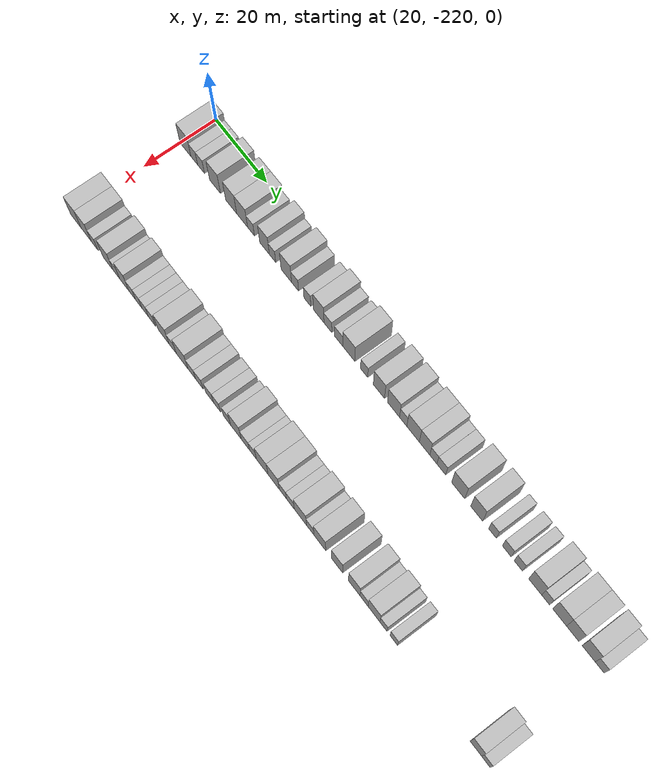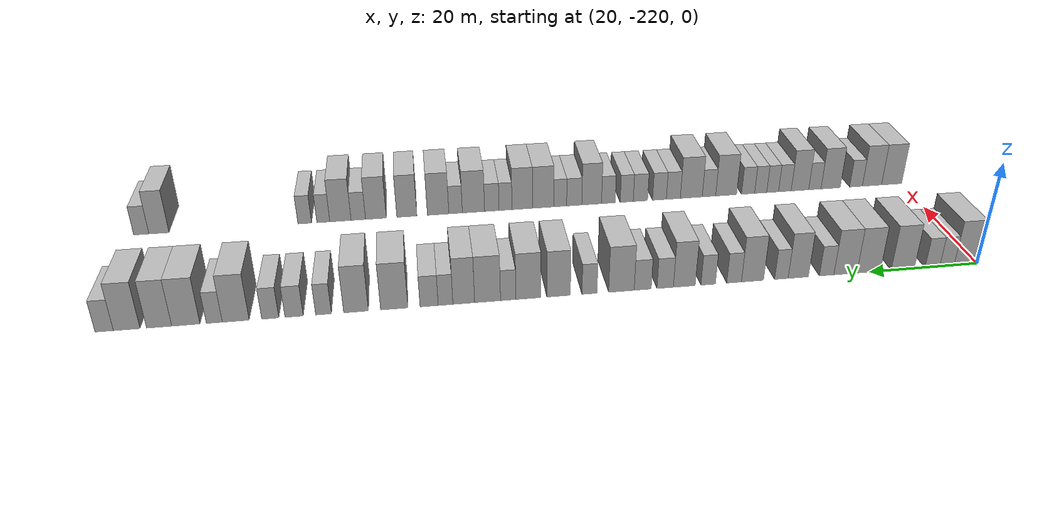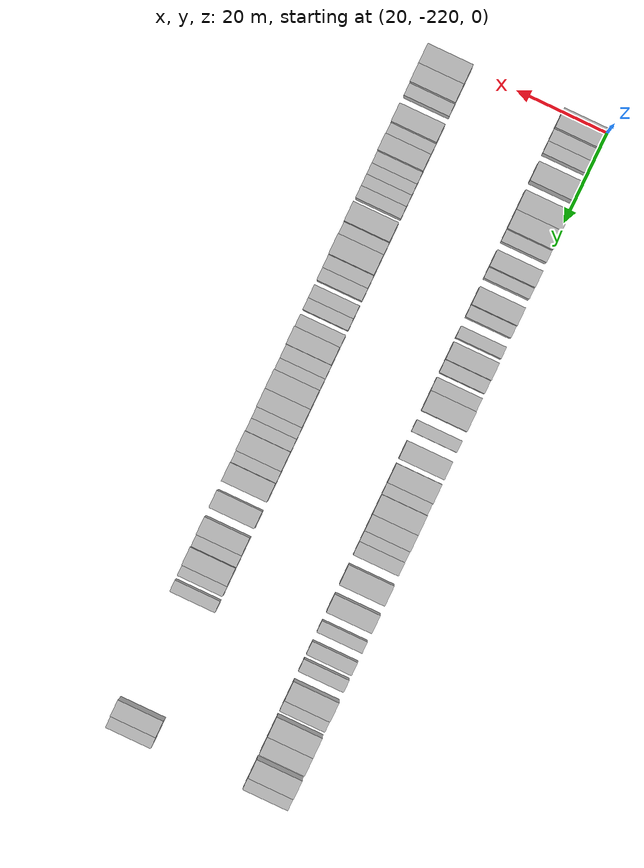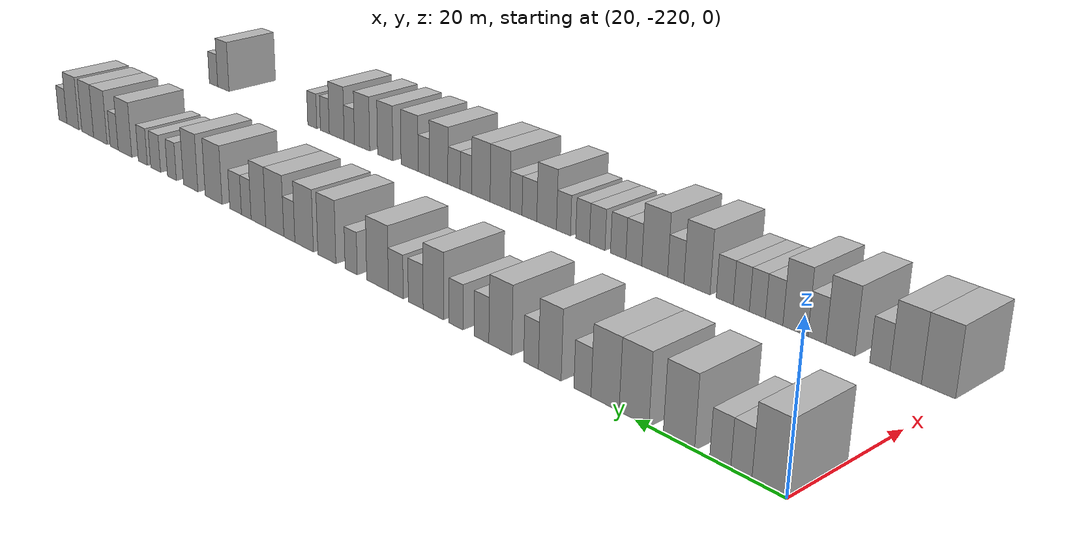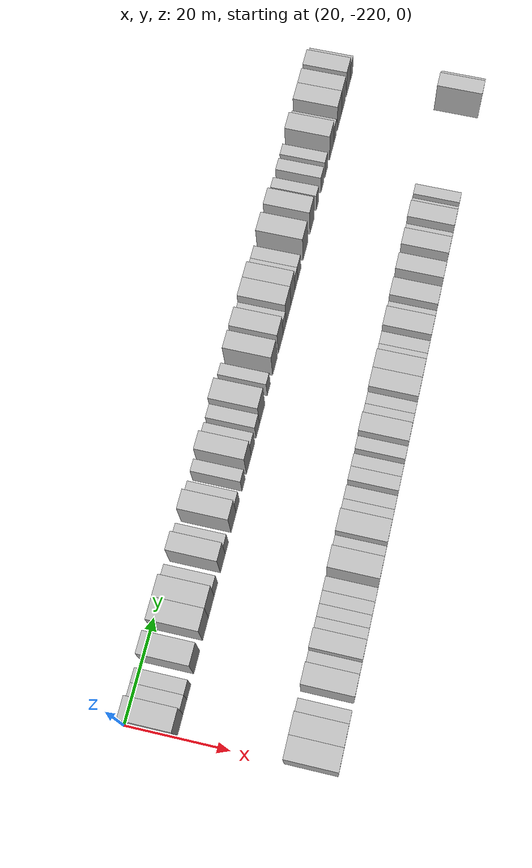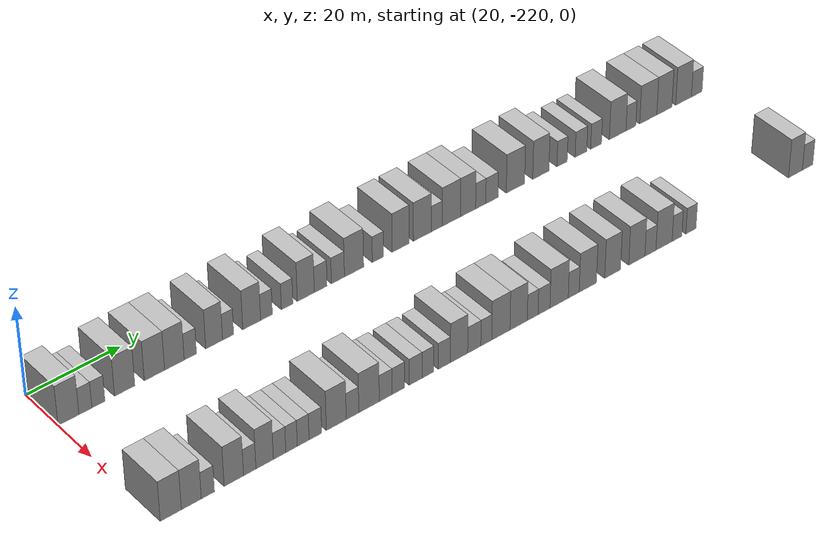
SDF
<sdf version="1.6">
 <world name="default">
  <model name="building_1">
   <static>1</static>
   <pose>25.0000 -217.8463 0 0.000000 0.000000 0.000000</pose>
   <link name="link">
    <pose>0 0 4.50 0 0 0</pose>
    <collision name="collision"><geometry><box><size>10.0000 4.3074 9.0000</size></box></geometry></collision>
    <visual name="visual">
     <cast_shadows>0</cast_shadows>
     <geometry><box><size>10.0000 4.3074 9.0000</size></box></geometry>
     <material>
      <script>
       <uri>model://HANNAS_wall/materials/scripts</uri>
       <uri>model://HANNAS_wall/materials/textures</uri>
       <name>vrc/HANNAS_wall</name>
      </script>
     </material>
    </visual>
   </link>
  </model>
  <model name="building_2">
   <static>1</static>
   <pose>25.0000 -214.3523 0 0.000000 0.000000 0.000000</pose>
   <link name="link">
    <pose>0 0 3.00 0 0 0</pose>
    <collision name="collision"><geometry><box><size>10.0000 2.6805 6.0000</size></box></geometry></collision>
    <visual name="visual">
     <cast_shadows>0</cast_shadows>
     <geometry><box><size>10.0000 2.6805 6.0000</size></box></geometry>
     <material>
      <script>
       <uri>model://HANNAS_wall/materials/scripts</uri>
       <uri>model://HANNAS_wall/materials/textures</uri>
       <name>vrc/HANNAS_wall</name>
      </script>
     </material>
    </visual>
   </link>
  </model>
  <model name="building_3">
   <static>1</static>
   <pose>25.0000 -211.6491 0 0.000000 0.000000 0.000000</pose>
   <link name="link">
    <pose>0 0 3.00 0 0 0</pose>
    <collision name="collision"><geometry><box><size>10.0000 2.7260 6.0000</size></box></geometry></collision>
    <visual name="visual">
     <cast_shadows>0</cast_shadows>
     <geometry><box><size>10.0000 2.7260 6.0000</size></box></geometry>
     <material>
      <script>
       <uri>model://HANNAS_wall/materials/scripts</uri>
       <uri>model://HANNAS_wall/materials/textures</uri>
       <name>vrc/HANNAS_wall</name>
      </script>
     </material>
    </visual>
   </link>
  </model>
  <model name="building_4">
   <static>1</static>
   <pose>25.0000 -206.1465 0 0.000000 0.000000 0.000000</pose>
   <link name="link">
    <pose>0 0 4.50 0 0 0</pose>
    <collision name="collision"><geometry><box><size>10.0000 4.2792 9.0000</size></box></geometry></collision>
    <visual name="visual">
     <cast_shadows>0</cast_shadows>
     <geometry><box><size>10.0000 4.2792 9.0000</size></box></geometry>
     <material>
      <script>
       <uri>model://HANNAS_wall/materials/scripts</uri>
       <uri>model://HANNAS_wall/materials/textures</uri>
       <name>vrc/HANNAS_wall</name>
      </script>
     </material>
    </visual>
   </link>
  </model>
  <model name="building_5">
   <static>1</static>
   <pose>25.0000 -199.8530 0 0.000000 0.000000 0.000000</pose>
   <link name="link">
    <pose>0 0 4.50 0 0 0</pose>
    <collision name="collision"><geometry><box><size>10.0000 4.3078 9.0000</size></box></geometry></collision>
    <visual name="visual">
     <cast_shadows>0</cast_shadows>
     <geometry><box><size>10.0000 4.3078 9.0000</size></box></geometry>
     <material>
      <script>
       <uri>model://HANNAS_wall/materials/scripts</uri>
       <uri>model://HANNAS_wall/materials/textures</uri>
       <name>vrc/HANNAS_wall</name>
      </script>
     </material>
    </visual>
   </link>
  </model>
  <model name="building_6">
   <static>1</static>
   <pose>25.0000 -195.5964 0 0.000000 0.000000 0.000000</pose>
   <link name="link">
    <pose>0 0 4.50 0 0 0</pose>
    <collision name="collision"><geometry><box><size>10.0000 4.2055 9.0000</size></box></geometry></collision>
    <visual name="visual">
     <cast_shadows>0</cast_shadows>
     <geometry><box><size>10.0000 4.2055 9.0000</size></box></geometry>
     <material>
      <script>
       <uri>model://HANNAS_wall/materials/scripts</uri>
       <uri>model://HANNAS_wall/materials/textures</uri>
       <name>vrc/HANNAS_wall</name>
      </script>
     </material>
    </visual>
   </link>
  </model>
  <model name="building_7">
   <static>1</static>
   <pose>25.0000 -192.1730 0 0.000000 0.000000 0.000000</pose>
   <link name="link">
    <pose>0 0 3.00 0 0 0</pose>
    <collision name="collision"><geometry><box><size>10.0000 2.6413 6.0000</size></box></geometry></collision>
    <visual name="visual">
     <cast_shadows>0</cast_shadows>
     <geometry><box><size>10.0000 2.6413 6.0000</size></box></geometry>
     <material>
      <script>
       <uri>model://HANNAS_wall/materials/scripts</uri>
       <uri>model://HANNAS_wall/materials/textures</uri>
       <name>vrc/HANNAS_wall</name>
      </script>
     </material>
    </visual>
   </link>
  </model>
  <model name="building_8">
   <static>1</static>
   <pose>25.0000 -187.0257 0 0.000000 0.000000 0.000000</pose>
   <link name="link">
    <pose>0 0 4.50 0 0 0</pose>
    <collision name="collision"><geometry><box><size>10.0000 3.6533 9.0000</size></box></geometry></collision>
    <visual name="visual">
     <cast_shadows>0</cast_shadows>
     <geometry><box><size>10.0000 3.6533 9.0000</size></box></geometry>
     <material>
      <script>
       <uri>model://HANNAS_wall/materials/scripts</uri>
       <uri>model://HANNAS_wall/materials/textures</uri>
       <name>vrc/HANNAS_wall</name>
      </script>
     </material>
    </visual>
   </link>
  </model>
  <model name="building_9">
   <static>1</static>
   <pose>25.0000 -183.9845 0 0.000000 0.000000 0.000000</pose>
   <link name="link">
    <pose>0 0 3.00 0 0 0</pose>
    <collision name="collision"><geometry><box><size>10.0000 2.4291 6.0000</size></box></geometry></collision>
    <visual name="visual">
     <cast_shadows>0</cast_shadows>
     <geometry><box><size>10.0000 2.4291 6.0000</size></box></geometry>
     <material>
      <script>
       <uri>model://HANNAS_wall/materials/scripts</uri>
       <uri>model://HANNAS_wall/materials/textures</uri>
       <name>vrc/HANNAS_wall</name>
      </script>
     </material>
    </visual>
   </link>
  </model>
  <model name="building_10">
   <static>1</static>
   <pose>25.0000 -178.7995 0 0.000000 0.000000 0.000000</pose>
   <link name="link">
    <pose>0 0 4.50 0 0 0</pose>
    <collision name="collision"><geometry><box><size>10.0000 3.9409 9.0000</size></box></geometry></collision>
    <visual name="visual">
     <cast_shadows>0</cast_shadows>
     <geometry><box><size>10.0000 3.9409 9.0000</size></box></geometry>
     <material>
      <script>
       <uri>model://HANNAS_wall/materials/scripts</uri>
       <uri>model://HANNAS_wall/materials/textures</uri>
       <name>vrc/HANNAS_wall</name>
      </script>
     </material>
    </visual>
   </link>
  </model>
  <model name="building_11">
   <static>1</static>
   <pose>25.0000 -175.5220 0 0.000000 0.000000 0.000000</pose>
   <link name="link">
    <pose>0 0 3.00 0 0 0</pose>
    <collision name="collision"><geometry><box><size>10.0000 2.6142 6.0000</size></box></geometry></collision>
    <visual name="visual">
     <cast_shadows>0</cast_shadows>
     <geometry><box><size>10.0000 2.6142 6.0000</size></box></geometry>
     <material>
      <script>
       <uri>model://HANNAS_wall/materials/scripts</uri>
       <uri>model://HANNAS_wall/materials/textures</uri>
       <name>vrc/HANNAS_wall</name>
      </script>
     </material>
    </visual>
   </link>
  </model>
  <model name="building_12">
   <static>1</static>
   <pose>25.0000 -170.9310 0 0.000000 0.000000 0.000000</pose>
   <link name="link">
    <pose>0 0 3.00 0 0 0</pose>
    <collision name="collision"><geometry><box><size>10.0000 2.5679 6.0000</size></box></geometry></collision>
    <visual name="visual">
     <cast_shadows>0</cast_shadows>
     <geometry><box><size>10.0000 2.5679 6.0000</size></box></geometry>
     <material>
      <script>
       <uri>model://HANNAS_wall/materials/scripts</uri>
       <uri>model://HANNAS_wall/materials/textures</uri>
       <name>vrc/HANNAS_wall</name>
      </script>
     </material>
    </visual>
   </link>
  </model>
  <model name="building_13">
   <static>1</static>
   <pose>25.0000 -166.7279 0 0.000000 0.000000 0.000000</pose>
   <link name="link">
    <pose>0 0 4.50 0 0 0</pose>
    <collision name="collision"><geometry><box><size>10.0000 3.8383 9.0000</size></box></geometry></collision>
    <visual name="visual">
     <cast_shadows>0</cast_shadows>
     <geometry><box><size>10.0000 3.8383 9.0000</size></box></geometry>
     <material>
      <script>
       <uri>model://HANNAS_wall/materials/scripts</uri>
       <uri>model://HANNAS_wall/materials/textures</uri>
       <name>vrc/HANNAS_wall</name>
      </script>
     </material>
    </visual>
   </link>
  </model>
  <model name="building_14">
   <static>1</static>
   <pose>25.0000 -163.3704 0 0.000000 0.000000 0.000000</pose>
   <link name="link">
    <pose>0 0 3.00 0 0 0</pose>
    <collision name="collision"><geometry><box><size>10.0000 2.8766 6.0000</size></box></geometry></collision>
    <visual name="visual">
     <cast_shadows>0</cast_shadows>
     <geometry><box><size>10.0000 2.8766 6.0000</size></box></geometry>
     <material>
      <script>
       <uri>model://HANNAS_wall/materials/scripts</uri>
       <uri>model://HANNAS_wall/materials/textures</uri>
       <name>vrc/HANNAS_wall</name>
      </script>
     </material>
    </visual>
   </link>
  </model>
  <model name="building_15">
   <static>1</static>
   <pose>25.0000 -159.4511 0 0.000000 0.000000 0.000000</pose>
   <link name="link">
    <pose>0 0 3.00 0 0 0</pose>
    <collision name="collision"><geometry><box><size>10.0000 2.9620 6.0000</size></box></geometry></collision>
    <visual name="visual">
     <cast_shadows>0</cast_shadows>
     <geometry><box><size>10.0000 2.9620 6.0000</size></box></geometry>
     <material>
      <script>
       <uri>model://HANNAS_wall/materials/scripts</uri>
       <uri>model://HANNAS_wall/materials/textures</uri>
       <name>vrc/HANNAS_wall</name>
      </script>
     </material>
    </visual>
   </link>
  </model>
  <model name="building_16">
   <static>1</static>
   <pose>25.0000 -155.7571 0 0.000000 0.000000 0.000000</pose>
   <link name="link">
    <pose>0 0 4.50 0 0 0</pose>
    <collision name="collision"><geometry><box><size>10.0000 4.4260 9.0000</size></box></geometry></collision>
    <visual name="visual">
     <cast_shadows>0</cast_shadows>
     <geometry><box><size>10.0000 4.4260 9.0000</size></box></geometry>
     <material>
      <script>
       <uri>model://HANNAS_wall/materials/scripts</uri>
       <uri>model://HANNAS_wall/materials/textures</uri>
       <name>vrc/HANNAS_wall</name>
      </script>
     </material>
    </visual>
   </link>
  </model>
  <model name="building_17">
   <static>1</static>
   <pose>25.0000 -150.2537 0 0.000000 0.000000 0.000000</pose>
   <link name="link">
    <pose>0 0 3.00 0 0 0</pose>
    <collision name="collision"><geometry><box><size>10.0000 2.5807 6.0000</size></box></geometry></collision>
    <visual name="visual">
     <cast_shadows>0</cast_shadows>
     <geometry><box><size>10.0000 2.5807 6.0000</size></box></geometry>
     <material>
      <script>
       <uri>model://HANNAS_wall/materials/scripts</uri>
       <uri>model://HANNAS_wall/materials/textures</uri>
       <name>vrc/HANNAS_wall</name>
      </script>
     </material>
    </visual>
   </link>
  </model>
  <model name="building_18">
   <static>1</static>
   <pose>25.0000 -144.9676 0 0.000000 0.000000 0.000000</pose>
   <link name="link">
    <pose>0 0 4.50 0 0 0</pose>
    <collision name="collision"><geometry><box><size>10.0000 3.9914 9.0000</size></box></geometry></collision>
    <visual name="visual">
     <cast_shadows>0</cast_shadows>
     <geometry><box><size>10.0000 3.9914 9.0000</size></box></geometry>
     <material>
      <script>
       <uri>model://HANNAS_wall/materials/scripts</uri>
       <uri>model://HANNAS_wall/materials/textures</uri>
       <name>vrc/HANNAS_wall</name>
      </script>
     </material>
    </visual>
   </link>
  </model>
  <model name="building_19">
   <static>1</static>
   <pose>25.0000 -139.8458 0 0.000000 0.000000 0.000000</pose>
   <link name="link">
    <pose>0 0 4.50 0 0 0</pose>
    <collision name="collision"><geometry><box><size>10.0000 4.2523 9.0000</size></box></geometry></collision>
    <visual name="visual">
     <cast_shadows>0</cast_shadows>
     <geometry><box><size>10.0000 4.2523 9.0000</size></box></geometry>
     <material>
      <script>
       <uri>model://HANNAS_wall/materials/scripts</uri>
       <uri>model://HANNAS_wall/materials/textures</uri>
       <name>vrc/HANNAS_wall</name>
      </script>
     </material>
    </visual>
   </link>
  </model>
  <model name="building_20">
   <static>1</static>
   <pose>25.0000 -136.4243 0 0.000000 0.000000 0.000000</pose>
   <link name="link">
    <pose>0 0 3.00 0 0 0</pose>
    <collision name="collision"><geometry><box><size>10.0000 2.5906 6.0000</size></box></geometry></collision>
    <visual name="visual">
     <cast_shadows>0</cast_shadows>
     <geometry><box><size>10.0000 2.5906 6.0000</size></box></geometry>
     <material>
      <script>
       <uri>model://HANNAS_wall/materials/scripts</uri>
       <uri>model://HANNAS_wall/materials/textures</uri>
       <name>vrc/HANNAS_wall</name>
      </script>
     </material>
    </visual>
   </link>
  </model>
  <model name="building_21">
   <static>1</static>
   <pose>25.0000 -132.9576 0 0.000000 0.000000 0.000000</pose>
   <link name="link">
    <pose>0 0 4.50 0 0 0</pose>
    <collision name="collision"><geometry><box><size>10.0000 4.3429 9.0000</size></box></geometry></collision>
    <visual name="visual">
     <cast_shadows>0</cast_shadows>
     <geometry><box><size>10.0000 4.3429 9.0000</size></box></geometry>
     <material>
      <script>
       <uri>model://HANNAS_wall/materials/scripts</uri>
       <uri>model://HANNAS_wall/materials/textures</uri>
       <name>vrc/HANNAS_wall</name>
      </script>
     </material>
    </visual>
   </link>
  </model>
  <model name="building_22">
   <static>1</static>
   <pose>25.0000 -128.9731 0 0.000000 0.000000 0.000000</pose>
   <link name="link">
    <pose>0 0 4.50 0 0 0</pose>
    <collision name="collision"><geometry><box><size>10.0000 3.6260 9.0000</size></box></geometry></collision>
    <visual name="visual">
     <cast_shadows>0</cast_shadows>
     <geometry><box><size>10.0000 3.6260 9.0000</size></box></geometry>
     <material>
      <script>
       <uri>model://HANNAS_wall/materials/scripts</uri>
       <uri>model://HANNAS_wall/materials/textures</uri>
       <name>vrc/HANNAS_wall</name>
      </script>
     </material>
    </visual>
   </link>
  </model>
  <model name="building_23">
   <static>1</static>
   <pose>25.0000 -125.9395 0 0.000000 0.000000 0.000000</pose>
   <link name="link">
    <pose>0 0 3.00 0 0 0</pose>
    <collision name="collision"><geometry><box><size>10.0000 2.4413 6.0000</size></box></geometry></collision>
    <visual name="visual">
     <cast_shadows>0</cast_shadows>
     <geometry><box><size>10.0000 2.4413 6.0000</size></box></geometry>
     <material>
      <script>
       <uri>model://HANNAS_wall/materials/scripts</uri>
       <uri>model://HANNAS_wall/materials/textures</uri>
       <name>vrc/HANNAS_wall</name>
      </script>
     </material>
    </visual>
   </link>
  </model>
  <model name="building_24">
   <static>1</static>
   <pose>25.0000 -123.2206 0 0.000000 0.000000 0.000000</pose>
   <link name="link">
    <pose>0 0 3.00 0 0 0</pose>
    <collision name="collision"><geometry><box><size>10.0000 2.9964 6.0000</size></box></geometry></collision>
    <visual name="visual">
     <cast_shadows>0</cast_shadows>
     <geometry><box><size>10.0000 2.9964 6.0000</size></box></geometry>
     <material>
      <script>
       <uri>model://HANNAS_wall/materials/scripts</uri>
       <uri>model://HANNAS_wall/materials/textures</uri>
       <name>vrc/HANNAS_wall</name>
      </script>
     </material>
    </visual>
   </link>
  </model>
  <model name="building_25">
   <static>1</static>
   <pose>25.0000 -117.4849 0 0.000000 0.000000 0.000000</pose>
   <link name="link">
    <pose>0 0 4.50 0 0 0</pose>
    <collision name="collision"><geometry><box><size>10.0000 4.4751 9.0000</size></box></geometry></collision>
    <visual name="visual">
     <cast_shadows>0</cast_shadows>
     <geometry><box><size>10.0000 4.4751 9.0000</size></box></geometry>
     <material>
      <script>
       <uri>model://HANNAS_wall/materials/scripts</uri>
       <uri>model://HANNAS_wall/materials/textures</uri>
       <name>vrc/HANNAS_wall</name>
      </script>
     </material>
    </visual>
   </link>
  </model>
  <model name="building_26">
   <static>1</static>
   <pose>25.0000 -111.2404 0 0.000000 0.000000 0.000000</pose>
   <link name="link">
    <pose>0 0 4.50 0 0 0</pose>
    <collision name="collision"><geometry><box><size>10.0000 4.0138 9.0000</size></box></geometry></collision>
    <visual name="visual">
     <cast_shadows>0</cast_shadows>
     <geometry><box><size>10.0000 4.0138 9.0000</size></box></geometry>
     <material>
      <script>
       <uri>model://HANNAS_wall/materials/scripts</uri>
       <uri>model://HANNAS_wall/materials/textures</uri>
       <name>vrc/HANNAS_wall</name>
      </script>
     </material>
    </visual>
   </link>
  </model>
  <model name="building_27">
   <static>1</static>
   <pose>25.0000 -105.9626 0 0.000000 0.000000 0.000000</pose>
   <link name="link">
    <pose>0 0 3.00 0 0 0</pose>
    <collision name="collision"><geometry><box><size>10.0000 2.5419 6.0000</size></box></geometry></collision>
    <visual name="visual">
     <cast_shadows>0</cast_shadows>
     <geometry><box><size>10.0000 2.5419 6.0000</size></box></geometry>
     <material>
      <script>
       <uri>model://HANNAS_wall/materials/scripts</uri>
       <uri>model://HANNAS_wall/materials/textures</uri>
       <name>vrc/HANNAS_wall</name>
      </script>
     </material>
    </visual>
   </link>
  </model>
  <model name="building_28">
   <static>1</static>
   <pose>25.0000 -101.2293 0 0.000000 0.000000 0.000000</pose>
   <link name="link">
    <pose>0 0 3.00 0 0 0</pose>
    <collision name="collision"><geometry><box><size>10.0000 2.9246 6.0000</size></box></geometry></collision>
    <visual name="visual">
     <cast_shadows>0</cast_shadows>
     <geometry><box><size>10.0000 2.9246 6.0000</size></box></geometry>
     <material>
      <script>
       <uri>model://HANNAS_wall/materials/scripts</uri>
       <uri>model://HANNAS_wall/materials/textures</uri>
       <name>vrc/HANNAS_wall</name>
      </script>
     </material>
    </visual>
   </link>
  </model>
  <model name="building_29">
   <static>1</static>
   <pose>25.0000 -97.4095 0 0.000000 0.000000 0.000000</pose>
   <link name="link">
    <pose>0 0 3.00 0 0 0</pose>
    <collision name="collision"><geometry><box><size>10.0000 2.7150 6.0000</size></box></geometry></collision>
    <visual name="visual">
     <cast_shadows>0</cast_shadows>
     <geometry><box><size>10.0000 2.7150 6.0000</size></box></geometry>
     <material>
      <script>
       <uri>model://HANNAS_wall/materials/scripts</uri>
       <uri>model://HANNAS_wall/materials/textures</uri>
       <name>vrc/HANNAS_wall</name>
      </script>
     </material>
    </visual>
   </link>
  </model>
  <model name="building_30">
   <static>1</static>
   <pose>25.0000 -91.9253 0 0.000000 0.000000 0.000000</pose>
   <link name="link">
    <pose>0 0 4.50 0 0 0</pose>
    <collision name="collision"><geometry><box><size>10.0000 4.2534 9.0000</size></box></geometry></collision>
    <visual name="visual">
     <cast_shadows>0</cast_shadows>
     <geometry><box><size>10.0000 4.2534 9.0000</size></box></geometry>
     <material>
      <script>
       <uri>model://HANNAS_wall/materials/scripts</uri>
       <uri>model://HANNAS_wall/materials/textures</uri>
       <name>vrc/HANNAS_wall</name>
      </script>
     </material>
    </visual>
   </link>
  </model>
  <model name="building_31">
   <static>1</static>
   <pose>25.0000 -88.5392 0 0.000000 0.000000 0.000000</pose>
   <link name="link">
    <pose>0 0 3.00 0 0 0</pose>
    <collision name="collision"><geometry><box><size>10.0000 2.5188 6.0000</size></box></geometry></collision>
    <visual name="visual">
     <cast_shadows>0</cast_shadows>
     <geometry><box><size>10.0000 2.5188 6.0000</size></box></geometry>
     <material>
      <script>
       <uri>model://HANNAS_wall/materials/scripts</uri>
       <uri>model://HANNAS_wall/materials/textures</uri>
       <name>vrc/HANNAS_wall</name>
      </script>
     </material>
    </visual>
   </link>
  </model>
  <model name="building_32">
   <static>1</static>
   <pose>25.0000 -84.0698 0 0.000000 0.000000 0.000000</pose>
   <link name="link">
    <pose>0 0 4.50 0 0 0</pose>
    <collision name="collision"><geometry><box><size>10.0000 4.4201 9.0000</size></box></geometry></collision>
    <visual name="visual">
     <cast_shadows>0</cast_shadows>
     <geometry><box><size>10.0000 4.4201 9.0000</size></box></geometry>
     <material>
      <script>
       <uri>model://HANNAS_wall/materials/scripts</uri>
       <uri>model://HANNAS_wall/materials/textures</uri>
       <name>vrc/HANNAS_wall</name>
      </script>
     </material>
    </visual>
   </link>
  </model>
  <model name="building_33">
   <static>1</static>
   <pose>25.0000 -79.8985 0 0.000000 0.000000 0.000000</pose>
   <link name="link">
    <pose>0 0 4.50 0 0 0</pose>
    <collision name="collision"><geometry><box><size>10.0000 3.9224 9.0000</size></box></geometry></collision>
    <visual name="visual">
     <cast_shadows>0</cast_shadows>
     <geometry><box><size>10.0000 3.9224 9.0000</size></box></geometry>
     <material>
      <script>
       <uri>model://HANNAS_wall/materials/scripts</uri>
       <uri>model://HANNAS_wall/materials/textures</uri>
       <name>vrc/HANNAS_wall</name>
      </script>
     </material>
    </visual>
   </link>
  </model>
  <model name="building_34">
   <static>1</static>
   <pose>25.0000 -74.8766 0 0.000000 0.000000 0.000000</pose>
   <link name="link">
    <pose>0 0 4.50 0 0 0</pose>
    <collision name="collision"><geometry><box><size>10.0000 4.1214 9.0000</size></box></geometry></collision>
    <visual name="visual">
     <cast_shadows>0</cast_shadows>
     <geometry><box><size>10.0000 4.1214 9.0000</size></box></geometry>
     <material>
      <script>
       <uri>model://HANNAS_wall/materials/scripts</uri>
       <uri>model://HANNAS_wall/materials/textures</uri>
       <name>vrc/HANNAS_wall</name>
      </script>
     </material>
    </visual>
   </link>
  </model>
  <model name="building_35">
   <static>1</static>
   <pose>25.0000 -71.4069 0 0.000000 0.000000 0.000000</pose>
   <link name="link">
    <pose>0 0 3.00 0 0 0</pose>
    <collision name="collision"><geometry><box><size>10.0000 2.8181 6.0000</size></box></geometry></collision>
    <visual name="visual">
     <cast_shadows>0</cast_shadows>
     <geometry><box><size>10.0000 2.8181 6.0000</size></box></geometry>
     <material>
      <script>
       <uri>model://HANNAS_wall/materials/scripts</uri>
       <uri>model://HANNAS_wall/materials/textures</uri>
       <name>vrc/HANNAS_wall</name>
      </script>
     </material>
    </visual>
   </link>
  </model>
  <model name="building_106">
   <static>1</static>
   <pose>55.0000 -217.8538 0 0.000000 0.000000 0.000000</pose>
   <link name="link">
    <pose>0 0 4.50 0 0 0</pose>
    <collision name="collision"><geometry><box><size>10.0000 4.2923 9.0000</size></box></geometry></collision>
    <visual name="visual">
     <cast_shadows>0</cast_shadows>
     <geometry><box><size>10.0000 4.2923 9.0000</size></box></geometry>
     <material>
      <script>
       <uri>model://HANNAS_wall/materials/scripts</uri>
       <uri>model://HANNAS_wall/materials/textures</uri>
       <name>vrc/HANNAS_wall</name>
      </script>
     </material>
    </visual>
   </link>
  </model>
  <model name="building_107">
   <static>1</static>
   <pose>55.0000 -213.6709 0 0.000000 0.000000 0.000000</pose>
   <link name="link">
    <pose>0 0 4.50 0 0 0</pose>
    <collision name="collision"><geometry><box><size>10.0000 4.0735 9.0000</size></box></geometry></collision>
    <visual name="visual">
     <cast_shadows>0</cast_shadows>
     <geometry><box><size>10.0000 4.0735 9.0000</size></box></geometry>
     <material>
      <script>
       <uri>model://HANNAS_wall/materials/scripts</uri>
       <uri>model://HANNAS_wall/materials/textures</uri>
       <name>vrc/HANNAS_wall</name>
      </script>
     </material>
    </visual>
   </link>
  </model>
  <model name="building_108">
   <static>1</static>
   <pose>55.0000 -210.2816 0 0.000000 0.000000 0.000000</pose>
   <link name="link">
    <pose>0 0 3.00 0 0 0</pose>
    <collision name="collision"><geometry><box><size>10.0000 2.7051 6.0000</size></box></geometry></collision>
    <visual name="visual">
     <cast_shadows>0</cast_shadows>
     <geometry><box><size>10.0000 2.7051 6.0000</size></box></geometry>
     <material>
      <script>
       <uri>model://HANNAS_wall/materials/scripts</uri>
       <uri>model://HANNAS_wall/materials/textures</uri>
       <name>vrc/HANNAS_wall</name>
      </script>
     </material>
    </visual>
   </link>
  </model>
  <model name="building_109">
   <static>1</static>
   <pose>55.0000 -204.9091 0 0.000000 0.000000 0.000000</pose>
   <link name="link">
    <pose>0 0 4.50 0 0 0</pose>
    <collision name="collision"><geometry><box><size>10.0000 4.0400 9.0000</size></box></geometry></collision>
    <visual name="visual">
     <cast_shadows>0</cast_shadows>
     <geometry><box><size>10.0000 4.0400 9.0000</size></box></geometry>
     <material>
      <script>
       <uri>model://HANNAS_wall/materials/scripts</uri>
       <uri>model://HANNAS_wall/materials/textures</uri>
       <name>vrc/HANNAS_wall</name>
      </script>
     </material>
    </visual>
   </link>
  </model>
  <model name="building_110">
   <static>1</static>
   <pose>55.0000 -201.5963 0 0.000000 0.000000 0.000000</pose>
   <link name="link">
    <pose>0 0 3.00 0 0 0</pose>
    <collision name="collision"><geometry><box><size>10.0000 2.5856 6.0000</size></box></geometry></collision>
    <visual name="visual">
     <cast_shadows>0</cast_shadows>
     <geometry><box><size>10.0000 2.5856 6.0000</size></box></geometry>
     <material>
      <script>
       <uri>model://HANNAS_wall/materials/scripts</uri>
       <uri>model://HANNAS_wall/materials/textures</uri>
       <name>vrc/HANNAS_wall</name>
      </script>
     </material>
    </visual>
   </link>
  </model>
  <model name="building_111">
   <static>1</static>
   <pose>55.0000 -198.4690 0 0.000000 0.000000 0.000000</pose>
   <link name="link">
    <pose>0 0 4.50 0 0 0</pose>
    <collision name="collision"><geometry><box><size>10.0000 3.6691 9.0000</size></box></geometry></collision>
    <visual name="visual">
     <cast_shadows>0</cast_shadows>
     <geometry><box><size>10.0000 3.6691 9.0000</size></box></geometry>
     <material>
      <script>
       <uri>model://HANNAS_wall/materials/scripts</uri>
       <uri>model://HANNAS_wall/materials/textures</uri>
       <name>vrc/HANNAS_wall</name>
      </script>
     </material>
    </visual>
   </link>
  </model>
  <model name="building_112">
   <static>1</static>
   <pose>55.0000 -195.3211 0 0.000000 0.000000 0.000000</pose>
   <link name="link">
    <pose>0 0 3.00 0 0 0</pose>
    <collision name="collision"><geometry><box><size>10.0000 2.6268 6.0000</size></box></geometry></collision>
    <visual name="visual">
     <cast_shadows>0</cast_shadows>
     <geometry><box><size>10.0000 2.6268 6.0000</size></box></geometry>
     <material>
      <script>
       <uri>model://HANNAS_wall/materials/scripts</uri>
       <uri>model://HANNAS_wall/materials/textures</uri>
       <name>vrc/HANNAS_wall</name>
      </script>
     </material>
    </visual>
   </link>
  </model>
  <model name="building_113">
   <static>1</static>
   <pose>55.0000 -192.7836 0 0.000000 0.000000 0.000000</pose>
   <link name="link">
    <pose>0 0 3.00 0 0 0</pose>
    <collision name="collision"><geometry><box><size>10.0000 2.4480 6.0000</size></box></geometry></collision>
    <visual name="visual">
     <cast_shadows>0</cast_shadows>
     <geometry><box><size>10.0000 2.4480 6.0000</size></box></geometry>
     <material>
      <script>
       <uri>model://HANNAS_wall/materials/scripts</uri>
       <uri>model://HANNAS_wall/materials/textures</uri>
       <name>vrc/HANNAS_wall</name>
      </script>
     </material>
    </visual>
   </link>
  </model>
  <model name="building_114">
   <static>1</static>
   <pose>55.0000 -190.3016 0 0.000000 0.000000 0.000000</pose>
   <link name="link">
    <pose>0 0 3.00 0 0 0</pose>
    <collision name="collision"><geometry><box><size>10.0000 2.5160 6.0000</size></box></geometry></collision>
    <visual name="visual">
     <cast_shadows>0</cast_shadows>
     <geometry><box><size>10.0000 2.5160 6.0000</size></box></geometry>
     <material>
      <script>
       <uri>model://HANNAS_wall/materials/scripts</uri>
       <uri>model://HANNAS_wall/materials/textures</uri>
       <name>vrc/HANNAS_wall</name>
      </script>
     </material>
    </visual>
   </link>
  </model>
  <model name="building_115">
   <static>1</static>
   <pose>55.0000 -187.6894 0 0.000000 0.000000 0.000000</pose>
   <link name="link">
    <pose>0 0 3.00 0 0 0</pose>
    <collision name="collision"><geometry><box><size>10.0000 2.7085 6.0000</size></box></geometry></collision>
    <visual name="visual">
     <cast_shadows>0</cast_shadows>
     <geometry><box><size>10.0000 2.7085 6.0000</size></box></geometry>
     <material>
      <script>
       <uri>model://HANNAS_wall/materials/scripts</uri>
       <uri>model://HANNAS_wall/materials/textures</uri>
       <name>vrc/HANNAS_wall</name>
      </script>
     </material>
    </visual>
   </link>
  </model>
  <model name="building_116">
   <static>1</static>
   <pose>55.0000 -183.1835 0 0.000000 0.000000 0.000000</pose>
   <link name="link">
    <pose>0 0 4.50 0 0 0</pose>
    <collision name="collision"><geometry><box><size>10.0000 4.3032 9.0000</size></box></geometry></collision>
    <visual name="visual">
     <cast_shadows>0</cast_shadows>
     <geometry><box><size>10.0000 4.3032 9.0000</size></box></geometry>
     <material>
      <script>
       <uri>model://HANNAS_wall/materials/scripts</uri>
       <uri>model://HANNAS_wall/materials/textures</uri>
       <name>vrc/HANNAS_wall</name>
      </script>
     </material>
    </visual>
   </link>
  </model>
  <model name="building_117">
   <static>1</static>
   <pose>55.0000 -179.6572 0 0.000000 0.000000 0.000000</pose>
   <link name="link">
    <pose>0 0 3.00 0 0 0</pose>
    <collision name="collision"><geometry><box><size>10.0000 2.7494 6.0000</size></box></geometry></collision>
    <visual name="visual">
     <cast_shadows>0</cast_shadows>
     <geometry><box><size>10.0000 2.7494 6.0000</size></box></geometry>
     <material>
      <script>
       <uri>model://HANNAS_wall/materials/scripts</uri>
       <uri>model://HANNAS_wall/materials/textures</uri>
       <name>vrc/HANNAS_wall</name>
      </script>
     </material>
    </visual>
   </link>
  </model>
  <model name="building_118">
   <static>1</static>
   <pose>55.0000 -176.0447 0 0.000000 0.000000 0.000000</pose>
   <link name="link">
    <pose>0 0 4.50 0 0 0</pose>
    <collision name="collision"><geometry><box><size>10.0000 4.4755 9.0000</size></box></geometry></collision>
    <visual name="visual">
     <cast_shadows>0</cast_shadows>
     <geometry><box><size>10.0000 4.4755 9.0000</size></box></geometry>
     <material>
      <script>
       <uri>model://HANNAS_wall/materials/scripts</uri>
       <uri>model://HANNAS_wall/materials/textures</uri>
       <name>vrc/HANNAS_wall</name>
      </script>
     </material>
    </visual>
   </link>
  </model>
  <model name="building_119">
   <static>1</static>
   <pose>55.0000 -172.3923 0 0.000000 0.000000 0.000000</pose>
   <link name="link">
    <pose>0 0 3.00 0 0 0</pose>
    <collision name="collision"><geometry><box><size>10.0000 2.8293 6.0000</size></box></geometry></collision>
    <visual name="visual">
     <cast_shadows>0</cast_shadows>
     <geometry><box><size>10.0000 2.8293 6.0000</size></box></geometry>
     <material>
      <script>
       <uri>model://HANNAS_wall/materials/scripts</uri>
       <uri>model://HANNAS_wall/materials/textures</uri>
       <name>vrc/HANNAS_wall</name>
      </script>
     </material>
    </visual>
   </link>
  </model>
  <model name="building_120">
   <static>1</static>
   <pose>55.0000 -169.5816 0 0.000000 0.000000 0.000000</pose>
   <link name="link">
    <pose>0 0 3.00 0 0 0</pose>
    <collision name="collision"><geometry><box><size>10.0000 2.7920 6.0000</size></box></geometry></collision>
    <visual name="visual">
     <cast_shadows>0</cast_shadows>
     <geometry><box><size>10.0000 2.7920 6.0000</size></box></geometry>
     <material>
      <script>
       <uri>model://HANNAS_wall/materials/scripts</uri>
       <uri>model://HANNAS_wall/materials/textures</uri>
       <name>vrc/HANNAS_wall</name>
      </script>
     </material>
    </visual>
   </link>
  </model>
  <model name="building_121">
   <static>1</static>
   <pose>55.0000 -165.7410 0 0.000000 0.000000 0.000000</pose>
   <link name="link">
    <pose>0 0 3.00 0 0 0</pose>
    <collision name="collision"><geometry><box><size>10.0000 2.8892 6.0000</size></box></geometry></collision>
    <visual name="visual">
     <cast_shadows>0</cast_shadows>
     <geometry><box><size>10.0000 2.8892 6.0000</size></box></geometry>
     <material>
      <script>
       <uri>model://HANNAS_wall/materials/scripts</uri>
       <uri>model://HANNAS_wall/materials/textures</uri>
       <name>vrc/HANNAS_wall</name>
      </script>
     </material>
    </visual>
   </link>
  </model>
  <model name="building_122">
   <static>1</static>
   <pose>55.0000 -162.9864 0 0.000000 0.000000 0.000000</pose>
   <link name="link">
    <pose>0 0 3.00 0 0 0</pose>
    <collision name="collision"><geometry><box><size>10.0000 2.6201 6.0000</size></box></geometry></collision>
    <visual name="visual">
     <cast_shadows>0</cast_shadows>
     <geometry><box><size>10.0000 2.6201 6.0000</size></box></geometry>
     <material>
      <script>
       <uri>model://HANNAS_wall/materials/scripts</uri>
       <uri>model://HANNAS_wall/materials/textures</uri>
       <name>vrc/HANNAS_wall</name>
      </script>
     </material>
    </visual>
   </link>
  </model>
  <model name="building_123">
   <static>1</static>
   <pose>55.0000 -159.3101 0 0.000000 0.000000 0.000000</pose>
   <link name="link">
    <pose>0 0 3.00 0 0 0</pose>
    <collision name="collision"><geometry><box><size>10.0000 2.7324 6.0000</size></box></geometry></collision>
    <visual name="visual">
     <cast_shadows>0</cast_shadows>
     <geometry><box><size>10.0000 2.7324 6.0000</size></box></geometry>
     <material>
      <script>
       <uri>model://HANNAS_wall/materials/scripts</uri>
       <uri>model://HANNAS_wall/materials/textures</uri>
       <name>vrc/HANNAS_wall</name>
      </script>
     </material>
    </visual>
   </link>
  </model>
  <model name="building_124">
   <static>1</static>
   <pose>55.0000 -155.9858 0 0.000000 0.000000 0.000000</pose>
   <link name="link">
    <pose>0 0 4.50 0 0 0</pose>
    <collision name="collision"><geometry><box><size>10.0000 3.9162 9.0000</size></box></geometry></collision>
    <visual name="visual">
     <cast_shadows>0</cast_shadows>
     <geometry><box><size>10.0000 3.9162 9.0000</size></box></geometry>
     <material>
      <script>
       <uri>model://HANNAS_wall/materials/scripts</uri>
       <uri>model://HANNAS_wall/materials/textures</uri>
       <name>vrc/HANNAS_wall</name>
      </script>
     </material>
    </visual>
   </link>
  </model>
  <model name="building_125">
   <static>1</static>
   <pose>55.0000 -152.5277 0 0.000000 0.000000 0.000000</pose>
   <link name="link">
    <pose>0 0 3.00 0 0 0</pose>
    <collision name="collision"><geometry><box><size>10.0000 2.9998 6.0000</size></box></geometry></collision>
    <visual name="visual">
     <cast_shadows>0</cast_shadows>
     <geometry><box><size>10.0000 2.9998 6.0000</size></box></geometry>
     <material>
      <script>
       <uri>model://HANNAS_wall/materials/scripts</uri>
       <uri>model://HANNAS_wall/materials/textures</uri>
       <name>vrc/HANNAS_wall</name>
      </script>
     </material>
    </visual>
   </link>
  </model>
  <model name="building_126">
   <static>1</static>
   <pose>55.0000 -149.7697 0 0.000000 0.000000 0.000000</pose>
   <link name="link">
    <pose>0 0 3.00 0 0 0</pose>
    <collision name="collision"><geometry><box><size>10.0000 2.5163 6.0000</size></box></geometry></collision>
    <visual name="visual">
     <cast_shadows>0</cast_shadows>
     <geometry><box><size>10.0000 2.5163 6.0000</size></box></geometry>
     <material>
      <script>
       <uri>model://HANNAS_wall/materials/scripts</uri>
       <uri>model://HANNAS_wall/materials/textures</uri>
       <name>vrc/HANNAS_wall</name>
      </script>
     </material>
    </visual>
   </link>
  </model>
  <model name="building_127">
   <static>1</static>
   <pose>55.0000 -146.4109 0 0.000000 0.000000 0.000000</pose>
   <link name="link">
    <pose>0 0 4.50 0 0 0</pose>
    <collision name="collision"><geometry><box><size>10.0000 4.2013 9.0000</size></box></geometry></collision>
    <visual name="visual">
     <cast_shadows>0</cast_shadows>
     <geometry><box><size>10.0000 4.2013 9.0000</size></box></geometry>
     <material>
      <script>
       <uri>model://HANNAS_wall/materials/scripts</uri>
       <uri>model://HANNAS_wall/materials/textures</uri>
       <name>vrc/HANNAS_wall</name>
      </script>
     </material>
    </visual>
   </link>
  </model>
  <model name="building_128">
   <static>1</static>
   <pose>55.0000 -142.2976 0 0.000000 0.000000 0.000000</pose>
   <link name="link">
    <pose>0 0 4.50 0 0 0</pose>
    <collision name="collision"><geometry><box><size>10.0000 4.0253 9.0000</size></box></geometry></collision>
    <visual name="visual">
     <cast_shadows>0</cast_shadows>
     <geometry><box><size>10.0000 4.0253 9.0000</size></box></geometry>
     <material>
      <script>
       <uri>model://HANNAS_wall/materials/scripts</uri>
       <uri>model://HANNAS_wall/materials/textures</uri>
       <name>vrc/HANNAS_wall</name>
      </script>
     </material>
    </visual>
   </link>
  </model>
  <model name="building_129">
   <static>1</static>
   <pose>55.0000 -139.0233 0 0.000000 0.000000 0.000000</pose>
   <link name="link">
    <pose>0 0 3.00 0 0 0</pose>
    <collision name="collision"><geometry><box><size>10.0000 2.5233 6.0000</size></box></geometry></collision>
    <visual name="visual">
     <cast_shadows>0</cast_shadows>
     <geometry><box><size>10.0000 2.5233 6.0000</size></box></geometry>
     <material>
      <script>
       <uri>model://HANNAS_wall/materials/scripts</uri>
       <uri>model://HANNAS_wall/materials/textures</uri>
       <name>vrc/HANNAS_wall</name>
      </script>
     </material>
    </visual>
   </link>
  </model>
  <model name="building_130">
   <static>1</static>
   <pose>55.0000 -136.3638 0 0.000000 0.000000 0.000000</pose>
   <link name="link">
    <pose>0 0 3.00 0 0 0</pose>
    <collision name="collision"><geometry><box><size>10.0000 2.7955 6.0000</size></box></geometry></collision>
    <visual name="visual">
     <cast_shadows>0</cast_shadows>
     <geometry><box><size>10.0000 2.7955 6.0000</size></box></geometry>
     <material>
      <script>
       <uri>model://HANNAS_wall/materials/scripts</uri>
       <uri>model://HANNAS_wall/materials/textures</uri>
       <name>vrc/HANNAS_wall</name>
      </script>
     </material>
    </visual>
   </link>
  </model>
  <model name="building_131">
   <static>1</static>
   <pose>55.0000 -132.8071 0 0.000000 0.000000 0.000000</pose>
   <link name="link">
    <pose>0 0 4.50 0 0 0</pose>
    <collision name="collision"><geometry><box><size>10.0000 4.3179 9.0000</size></box></geometry></collision>
    <visual name="visual">
     <cast_shadows>0</cast_shadows>
     <geometry><box><size>10.0000 4.3179 9.0000</size></box></geometry>
     <material>
      <script>
       <uri>model://HANNAS_wall/materials/scripts</uri>
       <uri>model://HANNAS_wall/materials/textures</uri>
       <name>vrc/HANNAS_wall</name>
      </script>
     </material>
    </visual>
   </link>
  </model>
  <model name="building_132">
   <static>1</static>
   <pose>55.0000 -129.3471 0 0.000000 0.000000 0.000000</pose>
   <link name="link">
    <pose>0 0 3.00 0 0 0</pose>
    <collision name="collision"><geometry><box><size>10.0000 2.6022 6.0000</size></box></geometry></collision>
    <visual name="visual">
     <cast_shadows>0</cast_shadows>
     <geometry><box><size>10.0000 2.6022 6.0000</size></box></geometry>
     <material>
      <script>
       <uri>model://HANNAS_wall/materials/scripts</uri>
       <uri>model://HANNAS_wall/materials/textures</uri>
       <name>vrc/HANNAS_wall</name>
      </script>
     </material>
    </visual>
   </link>
  </model>
  <model name="building_133">
   <static>1</static>
   <pose>55.0000 -125.9894 0 0.000000 0.000000 0.000000</pose>
   <link name="link">
    <pose>0 0 4.50 0 0 0</pose>
    <collision name="collision"><geometry><box><size>10.0000 4.1131 9.0000</size></box></geometry></collision>
    <visual name="visual">
     <cast_shadows>0</cast_shadows>
     <geometry><box><size>10.0000 4.1131 9.0000</size></box></geometry>
     <material>
      <script>
       <uri>model://HANNAS_wall/materials/scripts</uri>
       <uri>model://HANNAS_wall/materials/textures</uri>
       <name>vrc/HANNAS_wall</name>
      </script>
     </material>
    </visual>
   </link>
  </model>
  <model name="building_134">
   <static>1</static>
   <pose>55.0000 -120.0227 0 0.000000 0.000000 0.000000</pose>
   <link name="link">
    <pose>0 0 4.50 0 0 0</pose>
    <collision name="collision"><geometry><box><size>10.0000 3.8205 9.0000</size></box></geometry></collision>
    <visual name="visual">
     <cast_shadows>0</cast_shadows>
     <geometry><box><size>10.0000 3.8205 9.0000</size></box></geometry>
     <material>
      <script>
       <uri>model://HANNAS_wall/materials/scripts</uri>
       <uri>model://HANNAS_wall/materials/textures</uri>
       <name>vrc/HANNAS_wall</name>
      </script>
     </material>
    </visual>
   </link>
  </model>
  <model name="building_135">
   <static>1</static>
   <pose>55.0000 -114.1450 0 0.000000 0.000000 0.000000</pose>
   <link name="link">
    <pose>0 0 4.50 0 0 0</pose>
    <collision name="collision"><geometry><box><size>10.0000 3.9349 9.0000</size></box></geometry></collision>
    <visual name="visual">
     <cast_shadows>0</cast_shadows>
     <geometry><box><size>10.0000 3.9349 9.0000</size></box></geometry>
     <material>
      <script>
       <uri>model://HANNAS_wall/materials/scripts</uri>
       <uri>model://HANNAS_wall/materials/textures</uri>
       <name>vrc/HANNAS_wall</name>
      </script>
     </material>
    </visual>
   </link>
  </model>
  <model name="building_136">
   <static>1</static>
   <pose>55.0000 -110.8173 0 0.000000 0.000000 0.000000</pose>
   <link name="link">
    <pose>0 0 3.00 0 0 0</pose>
    <collision name="collision"><geometry><box><size>10.0000 2.7204 6.0000</size></box></geometry></collision>
    <visual name="visual">
     <cast_shadows>0</cast_shadows>
     <geometry><box><size>10.0000 2.7204 6.0000</size></box></geometry>
     <material>
      <script>
       <uri>model://HANNAS_wall/materials/scripts</uri>
       <uri>model://HANNAS_wall/materials/textures</uri>
       <name>vrc/HANNAS_wall</name>
      </script>
     </material>
    </visual>
   </link>
  </model>
  <model name="building_137">
   <static>1</static>
   <pose>55.0000 -107.4563 0 0.000000 0.000000 0.000000</pose>
   <link name="link">
    <pose>0 0 4.50 0 0 0</pose>
    <collision name="collision"><geometry><box><size>10.0000 4.0018 9.0000</size></box></geometry></collision>
    <visual name="visual">
     <cast_shadows>0</cast_shadows>
     <geometry><box><size>10.0000 4.0018 9.0000</size></box></geometry>
     <material>
      <script>
       <uri>model://HANNAS_wall/materials/scripts</uri>
       <uri>model://HANNAS_wall/materials/textures</uri>
       <name>vrc/HANNAS_wall</name>
      </script>
     </material>
    </visual>
   </link>
  </model>
  <model name="building_138">
   <static>1</static>
   <pose>55.0000 -104.2515 0 0.000000 0.000000 0.000000</pose>
   <link name="link">
    <pose>0 0 3.00 0 0 0</pose>
    <collision name="collision"><geometry><box><size>10.0000 2.4077 6.0000</size></box></geometry></collision>
    <visual name="visual">
     <cast_shadows>0</cast_shadows>
     <geometry><box><size>10.0000 2.4077 6.0000</size></box></geometry>
     <material>
      <script>
       <uri>model://HANNAS_wall/materials/scripts</uri>
       <uri>model://HANNAS_wall/materials/textures</uri>
       <name>vrc/HANNAS_wall</name>
      </script>
     </material>
    </visual>
   </link>
  </model>
  <model name="building_139">
   <static>1</static>
   <pose>55.0000 -100.7811 0 0.000000 0.000000 0.000000</pose>
   <link name="link">
    <pose>0 0 3.00 0 0 0</pose>
    <collision name="collision"><geometry><box><size>10.0000 2.5333 6.0000</size></box></geometry></collision>
    <visual name="visual">
     <cast_shadows>0</cast_shadows>
     <geometry><box><size>10.0000 2.5333 6.0000</size></box></geometry>
     <material>
      <script>
       <uri>model://HANNAS_wall/materials/scripts</uri>
       <uri>model://HANNAS_wall/materials/textures</uri>
       <name>vrc/HANNAS_wall</name>
      </script>
     </material>
    </visual>
   </link>
  </model>
  <model name="building_140">
   <static>1</static>
   <pose>55.0000 -74.0831 0 0.000000 0.000000 0.000000</pose>
   <link name="link">
    <pose>0 0 4.50 0 0 0</pose>
    <collision name="collision"><geometry><box><size>10.0000 3.6209 9.0000</size></box></geometry></collision>
    <visual name="visual">
     <cast_shadows>0</cast_shadows>
     <geometry><box><size>10.0000 3.6209 9.0000</size></box></geometry>
     <material>
      <script>
       <uri>model://HANNAS_wall/materials/scripts</uri>
       <uri>model://HANNAS_wall/materials/textures</uri>
       <name>vrc/HANNAS_wall</name>
      </script>
     </material>
    </visual>
   </link>
  </model>
  <model name="building_141">
   <static>1</static>
   <pose>55.0000 -70.9052 0 0.000000 0.000000 0.000000</pose>
   <link name="link">
    <pose>0 0 3.00 0 0 0</pose>
    <collision name="collision"><geometry><box><size>10.0000 2.7350 6.0000</size></box></geometry></collision>
    <visual name="visual">
     <cast_shadows>0</cast_shadows>
     <geometry><box><size>10.0000 2.7350 6.0000</size></box></geometry>
     <material>
      <script>
       <uri>model://HANNAS_wall/materials/scripts</uri>
       <uri>model://HANNAS_wall/materials/textures</uri>
       <name>vrc/HANNAS_wall</name>
      </script>
     </material>
    </visual>
   </link>
  </model>
 </world>
</sdf>
